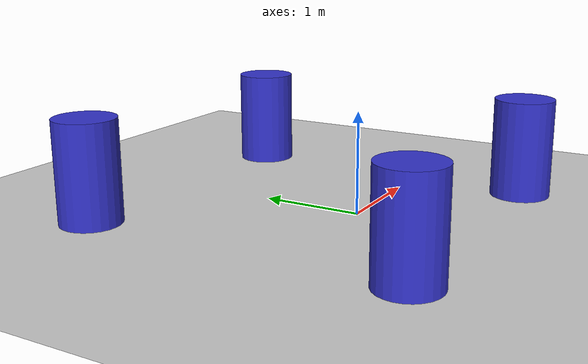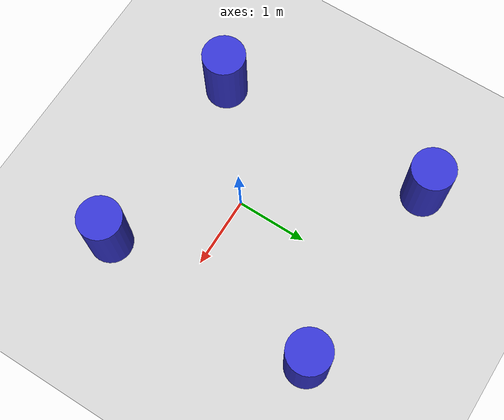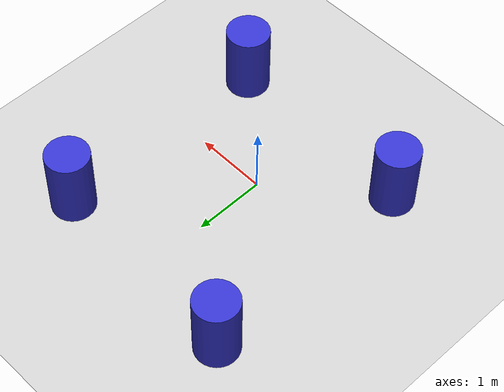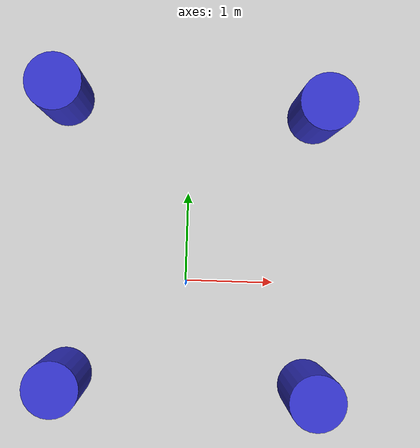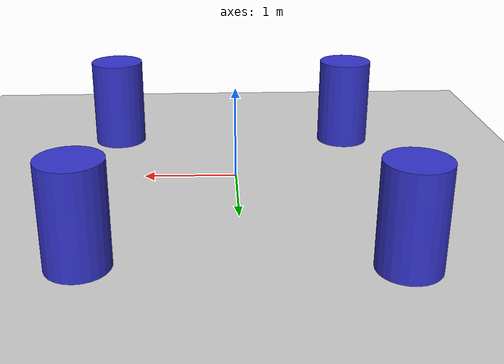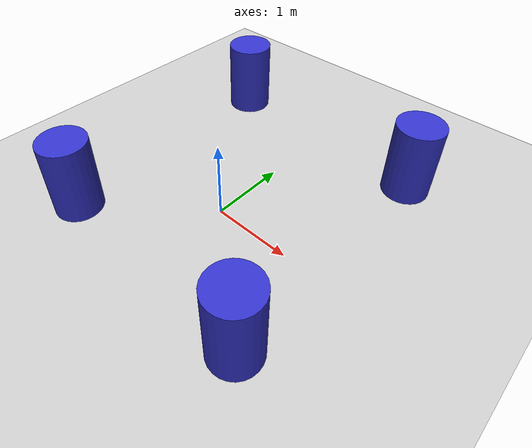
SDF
<sdf version="1.7">
 <world name="simple">
  <scene><sky><clouds>0</clouds></sky></scene>
  <include><uri>https://fuel.ignitionrobotics.org/1.0/OpenRobotics/models/Ground Plane</uri></include>
  <model name="cylinder_0">
   <pose>1.42527 1.91839 0.5 0 0 0</pose>
   <link name="cylinder_link">
    <inertial><mass>1.0</mass><inertia><ixx>0.1458</ixx><iyy>0.1458</iyy><izz>0.125</izz></inertia></inertial>
    <collision name="collision">
     <geometry><cylinder><radius>0.3</radius><length>1</length></cylinder></geometry>
    </collision>
    <visual name="visual">
     <geometry><cylinder><radius>0.3</radius><length>1</length></cylinder></geometry>
     <material><diffuse>0.2 0.2 0.8 1.0</diffuse></material>
    </visual>
   </link>
   <static>true</static>
  </model>
  <model name="cylinder_1">
   <pose>1.38908 -1.17942 0.5 0 0 0</pose>
   <link name="cylinder_link">
    <inertial><mass>1.0</mass></inertial>
    <collision name="collision">
     <geometry><cylinder><radius>0.3</radius><length>1</length></cylinder></geometry>
    </collision>
    <visual name="visual">
     <geometry><cylinder><radius>0.3</radius><length>1</length></cylinder></geometry>
     <material><diffuse>0.2 0.2 0.8 1.0</diffuse></material>
    </visual>
   </link>
   <static>true</static>
  </model>
  <model name="cylinder_2">
   <pose>-1.36524 -1.11176 0.5 0 0 0</pose>
   <link name="cylinder_link">
    <inertial><mass>1.0</mass></inertial>
    <collision name="collision">
     <geometry><cylinder><radius>0.3</radius><length>1</length></cylinder></geometry>
    </collision>
    <visual name="visual">
     <geometry><cylinder><radius>0.3</radius><length>1</length></cylinder></geometry>
     <material><diffuse>0.2 0.2 0.8 1.0</diffuse></material>
    </visual>
   </link>
   <static>true</static>
  </model>
  <model name="cylinder_3">
   <pose>-1.41804 2.05402 0.5 0 0 0</pose>
   <link name="cylinder_link">
    <inertial><mass>1.0</mass></inertial>
    <collision name="collision">
     <geometry><cylinder><radius>0.3</radius><length>1</length></cylinder></geometry>
    </collision>
    <visual name="visual">
     <geometry><cylinder><radius>0.3</radius><length>1</length></cylinder></geometry>
     <material><diffuse>0.2 0.2 0.8 1.0</diffuse></material>
    </visual>
   </link>
   <static>true</static>
  </model>
 </world>
</sdf>
